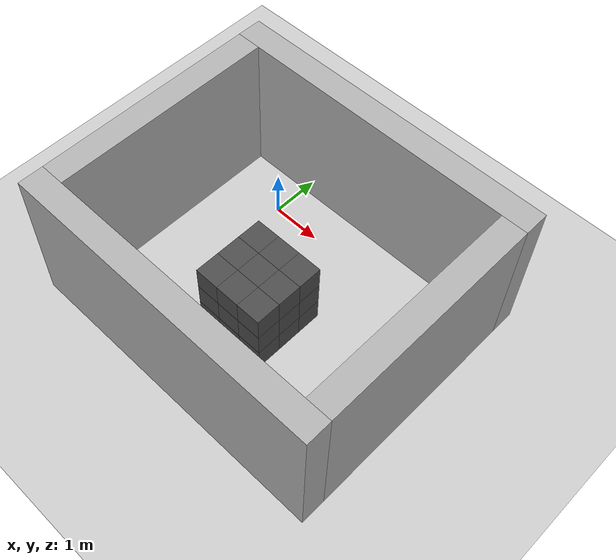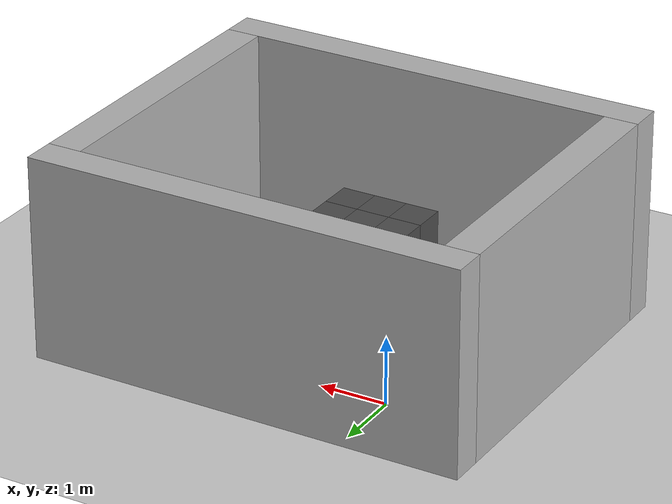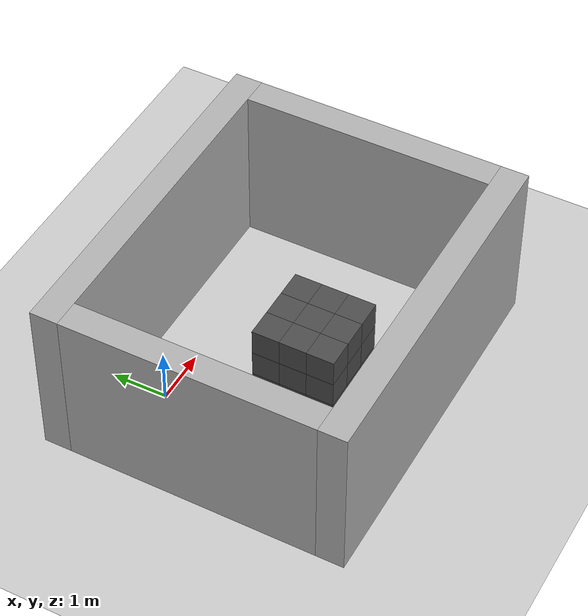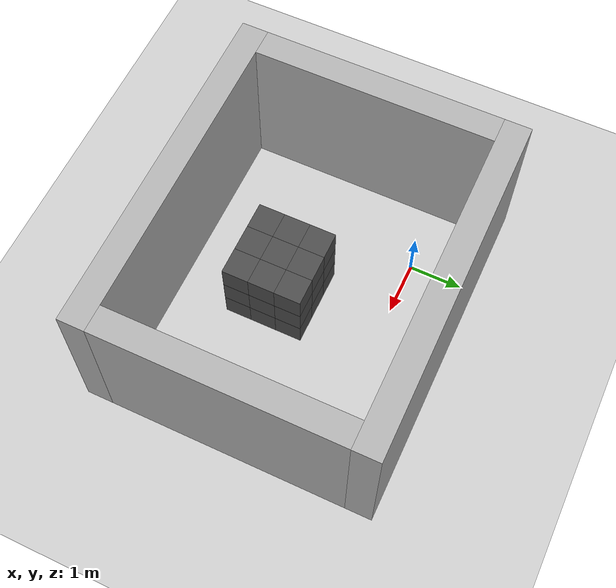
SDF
<sdf version="1.6">
 <world name="default">
  <light name="sun" type="directional">
   <cast_shadows>0</cast_shadows>
   <pose>0 0 10 0 -0 0</pose>
   <diffuse>0.8 0.8 0.8 1</diffuse>
   <specular>0.2 0.2 0.2 1</specular>
   <attenuation>
    <range>1000</range>
    <constant>0.9</constant>
    <linear>0.01</linear>
    <quadratic>0.001</quadratic>
   </attenuation>
   <direction>-0.5 0.1 -0.9</direction>
  </light>
  <include><uri>model://ground_plane</uri></include>
  <gravity>0 0 -9.8</gravity>
  <magnetic_field>6e-06 2.3e-05 -4.2e-05</magnetic_field>
  <atmosphere type="adiabatic"/>
  <physics name="default_physics" default="0" type="ode">
   <max_step_size>0.001</max_step_size>
   <real_time_factor>1</real_time_factor>
   <real_time_update_rate>1000</real_time_update_rate>
  </physics>
  <scene><ambient>0.4 0.4 0.4 1</ambient><background>0.7 0.7 0.7 1</background><shadows>0</shadows></scene>
  <spherical_coordinates>
   <surface_model>EARTH_WGS84</surface_model>
   <latitude_deg>0</latitude_deg>
   <longitude_deg>0</longitude_deg>
   <elevation>0</elevation>
   <heading_deg>0</heading_deg>
  </spherical_coordinates>
  <model name="wall_0">
   <pose frame="sim_world">-1.5 -1.5 1.5 0 0 0</pose>
   <static>True</static>
   <link name="wall_0_link">
    <inertial>
     <mass>100</mass>
     <inertia>
      <ixx>0.166667</ixx>
      <ixy>0</ixy>
      <ixz>0</ixz>
      <iyy>0.166667</iyy>
      <iyz>0</iyz>
      <izz>0.166667</izz>
     </inertia>
    </inertial>
    <collision name="wall_0_collision">
     <geometry><box><size>0.5 4.5 3.0</size></box></geometry>
     <max_contacts>100</max_contacts>
    </collision>
    <visual name="wall_0_visual">
     <geometry><box><size>0.5 4.5 3.0</size></box></geometry>
     <material><ambient>0.7 0.7 0.7 1</ambient><diffuse>0.7 0.7 0.7 1</diffuse></material>
    </visual>
   </link>
  </model>
  <model name="wall_1">
   <pose frame="sim_world">4.5 -1.5 1.5 0 0 0</pose>
   <static>True</static>
   <link name="wall_1_link">
    <inertial>
     <mass>100</mass>
     <inertia>
      <ixx>0.166667</ixx>
      <ixy>0</ixy>
      <ixz>0</ixz>
      <iyy>0.166667</iyy>
      <iyz>0</iyz>
      <izz>0.166667</izz>
     </inertia>
    </inertial>
    <collision name="wall_1_collision">
     <geometry><box><size>0.5 4.5 3.0</size></box></geometry>
     <max_contacts>100</max_contacts>
    </collision>
    <visual name="wall_1_visual">
     <geometry><box><size>0.5 4.5 3.0</size></box></geometry>
     <material><ambient>0.7 0.7 0.7 1</ambient><diffuse>0.7 0.7 0.7 1</diffuse></material>
    </visual>
   </link>
  </model>
  <model name="wall_2">
   <pose frame="sim_world">1.5 -4.0 1.5 0 0 0</pose>
   <static>True</static>
   <link name="wall_2_link">
    <inertial>
     <mass>100</mass>
     <inertia>
      <ixx>0.166667</ixx>
      <ixy>0</ixy>
      <ixz>0</ixz>
      <iyy>0.166667</iyy>
      <iyz>0</iyz>
      <izz>0.166667</izz>
     </inertia>
    </inertial>
    <collision name="wall_2_collision">
     <geometry><box><size>6.5 0.5 3.0</size></box></geometry>
     <max_contacts>100</max_contacts>
    </collision>
    <visual name="wall_2_visual">
     <geometry><box><size>6.5 0.5 3.0</size></box></geometry>
     <material><ambient>0.7 0.7 0.7 1</ambient><diffuse>0.7 0.7 0.7 1</diffuse></material>
    </visual>
   </link>
  </model>
  <model name="wall_3">
   <pose frame="sim_world">1.5 1.0 1.5 0 0 0</pose>
   <static>True</static>
   <link name="wall_3_link">
    <inertial>
     <mass>100</mass>
     <inertia>
      <ixx>0.166667</ixx>
      <ixy>0</ixy>
      <ixz>0</ixz>
      <iyy>0.166667</iyy>
      <iyz>0</iyz>
      <izz>0.166667</izz>
     </inertia>
    </inertial>
    <collision name="wall_3_collision">
     <geometry><box><size>6.5 0.5 3.0</size></box></geometry>
     <max_contacts>100</max_contacts>
    </collision>
    <visual name="wall_3_visual">
     <geometry><box><size>6.5 0.5 3.0</size></box></geometry>
     <material><ambient>0.7 0.7 0.7 1</ambient><diffuse>0.7 0.7 0.7 1</diffuse></material>
    </visual>
   </link>
  </model>
  <model name="box_0">
   <pose frame="sim_world">1.0 -2.5 0.25 0 -0 0</pose>
   <static>True</static>
   <link name="box_0_link">
    <inertial>
     <mass>100</mass>
     <inertia>
      <ixx>0.166667</ixx>
      <ixy>0</ixy>
      <ixz>0</ixz>
      <iyy>0.166667</iyy>
      <iyz>0</iyz>
      <izz>0.166667</izz>
     </inertia>
    </inertial>
    <collision name="box_0_collision">
     <geometry><box><size>0.5 0.5 0.5</size></box></geometry>
     <max_contacts>100</max_contacts>
    </collision>
    <visual name="box_0_visual">
     <geometry><box><size>0.5 0.5 0.5</size></box></geometry>
     <material><ambient>0.3 0.3 0.3 1</ambient><diffuse>0.3 0.3 0.3 1</diffuse></material>
    </visual>
   </link>
  </model>
  <model name="box_1">
   <pose frame="sim_world">1.0 -2.5 0.75 0 -0 0</pose>
   <static>True</static>
   <link name="box_1_link">
    <inertial>
     <mass>100</mass>
     <inertia>
      <ixx>0.166667</ixx>
      <ixy>0</ixy>
      <ixz>0</ixz>
      <iyy>0.166667</iyy>
      <iyz>0</iyz>
      <izz>0.166667</izz>
     </inertia>
    </inertial>
    <collision name="box_1_collision">
     <geometry><box><size>0.5 0.5 0.5</size></box></geometry>
     <max_contacts>100</max_contacts>
    </collision>
    <visual name="box_1_visual">
     <geometry><box><size>0.5 0.5 0.5</size></box></geometry>
     <material><ambient>0.3 0.3 0.3 1</ambient><diffuse>0.3 0.3 0.3 1</diffuse></material>
    </visual>
   </link>
  </model>
  <model name="box_2">
   <pose frame="sim_world">1.0 -2.5 1.25 0 -0 0</pose>
   <static>True</static>
   <link name="box_2_link">
    <inertial>
     <mass>100</mass>
     <inertia>
      <ixx>0.166667</ixx>
      <ixy>0</ixy>
      <ixz>0</ixz>
      <iyy>0.166667</iyy>
      <iyz>0</iyz>
      <izz>0.166667</izz>
     </inertia>
    </inertial>
    <collision name="box_2_collision">
     <geometry><box><size>0.5 0.5 0.5</size></box></geometry>
     <max_contacts>100</max_contacts>
    </collision>
    <visual name="box_2_visual">
     <geometry><box><size>0.5 0.5 0.5</size></box></geometry>
     <material><ambient>0.3 0.3 0.3 1</ambient><diffuse>0.3 0.3 0.3 1</diffuse></material>
    </visual>
   </link>
  </model>
  <model name="box_3">
   <pose frame="sim_world">1.0 -2.0 0.25 0 -0 0</pose>
   <static>True</static>
   <link name="box_3_link">
    <inertial>
     <mass>100</mass>
     <inertia>
      <ixx>0.166667</ixx>
      <ixy>0</ixy>
      <ixz>0</ixz>
      <iyy>0.166667</iyy>
      <iyz>0</iyz>
      <izz>0.166667</izz>
     </inertia>
    </inertial>
    <collision name="box_3_collision">
     <geometry><box><size>0.5 0.5 0.5</size></box></geometry>
     <max_contacts>100</max_contacts>
    </collision>
    <visual name="box_3_visual">
     <geometry><box><size>0.5 0.5 0.5</size></box></geometry>
     <material><ambient>0.3 0.3 0.3 1</ambient><diffuse>0.3 0.3 0.3 1</diffuse></material>
    </visual>
   </link>
  </model>
  <model name="box_4">
   <pose frame="sim_world">1.0 -2.0 0.75 0 -0 0</pose>
   <static>True</static>
   <link name="box_4_link">
    <inertial>
     <mass>100</mass>
     <inertia>
      <ixx>0.166667</ixx>
      <ixy>0</ixy>
      <ixz>0</ixz>
      <iyy>0.166667</iyy>
      <iyz>0</iyz>
      <izz>0.166667</izz>
     </inertia>
    </inertial>
    <collision name="box_4_collision">
     <geometry><box><size>0.5 0.5 0.5</size></box></geometry>
     <max_contacts>100</max_contacts>
    </collision>
    <visual name="box_4_visual">
     <geometry><box><size>0.5 0.5 0.5</size></box></geometry>
     <material><ambient>0.3 0.3 0.3 1</ambient><diffuse>0.3 0.3 0.3 1</diffuse></material>
    </visual>
   </link>
  </model>
  <model name="box_5">
   <pose frame="sim_world">1.0 -2.0 1.25 0 -0 0</pose>
   <static>True</static>
   <link name="box_5_link">
    <inertial>
     <mass>100</mass>
     <inertia>
      <ixx>0.166667</ixx>
      <ixy>0</ixy>
      <ixz>0</ixz>
      <iyy>0.166667</iyy>
      <iyz>0</iyz>
      <izz>0.166667</izz>
     </inertia>
    </inertial>
    <collision name="box_5_collision">
     <geometry><box><size>0.5 0.5 0.5</size></box></geometry>
     <max_contacts>100</max_contacts>
    </collision>
    <visual name="box_5_visual">
     <geometry><box><size>0.5 0.5 0.5</size></box></geometry>
     <material><ambient>0.3 0.3 0.3 1</ambient><diffuse>0.3 0.3 0.3 1</diffuse></material>
    </visual>
   </link>
  </model>
  <model name="box_6">
   <pose frame="sim_world">1.0 -1.5 0.25 0 -0 0</pose>
   <static>True</static>
   <link name="box_6_link">
    <inertial>
     <mass>100</mass>
     <inertia>
      <ixx>0.166667</ixx>
      <ixy>0</ixy>
      <ixz>0</ixz>
      <iyy>0.166667</iyy>
      <iyz>0</iyz>
      <izz>0.166667</izz>
     </inertia>
    </inertial>
    <collision name="box_6_collision">
     <geometry><box><size>0.5 0.5 0.5</size></box></geometry>
     <max_contacts>100</max_contacts>
    </collision>
    <visual name="box_6_visual">
     <geometry><box><size>0.5 0.5 0.5</size></box></geometry>
     <material><ambient>0.3 0.3 0.3 1</ambient><diffuse>0.3 0.3 0.3 1</diffuse></material>
    </visual>
   </link>
  </model>
  <model name="box_7">
   <pose frame="sim_world">1.0 -1.5 0.75 0 -0 0</pose>
   <static>True</static>
   <link name="box_7_link">
    <inertial>
     <mass>100</mass>
     <inertia>
      <ixx>0.166667</ixx>
      <ixy>0</ixy>
      <ixz>0</ixz>
      <iyy>0.166667</iyy>
      <iyz>0</iyz>
      <izz>0.166667</izz>
     </inertia>
    </inertial>
    <collision name="box_7_collision">
     <geometry><box><size>0.5 0.5 0.5</size></box></geometry>
     <max_contacts>100</max_contacts>
    </collision>
    <visual name="box_7_visual">
     <geometry><box><size>0.5 0.5 0.5</size></box></geometry>
     <material><ambient>0.3 0.3 0.3 1</ambient><diffuse>0.3 0.3 0.3 1</diffuse></material>
    </visual>
   </link>
  </model>
  <model name="box_8">
   <pose frame="sim_world">1.0 -1.5 1.25 0 -0 0</pose>
   <static>True</static>
   <link name="box_8_link">
    <inertial>
     <mass>100</mass>
     <inertia>
      <ixx>0.166667</ixx>
      <ixy>0</ixy>
      <ixz>0</ixz>
      <iyy>0.166667</iyy>
      <iyz>0</iyz>
      <izz>0.166667</izz>
     </inertia>
    </inertial>
    <collision name="box_8_collision">
     <geometry><box><size>0.5 0.5 0.5</size></box></geometry>
     <max_contacts>100</max_contacts>
    </collision>
    <visual name="box_8_visual">
     <geometry><box><size>0.5 0.5 0.5</size></box></geometry>
     <material><ambient>0.3 0.3 0.3 1</ambient><diffuse>0.3 0.3 0.3 1</diffuse></material>
    </visual>
   </link>
  </model>
  <model name="box_9">
   <pose frame="sim_world">1.5 -2.5 0.25 0 -0 0</pose>
   <static>True</static>
   <link name="box_9_link">
    <inertial>
     <mass>100</mass>
     <inertia>
      <ixx>0.166667</ixx>
      <ixy>0</ixy>
      <ixz>0</ixz>
      <iyy>0.166667</iyy>
      <iyz>0</iyz>
      <izz>0.166667</izz>
     </inertia>
    </inertial>
    <collision name="box_9_collision">
     <geometry><box><size>0.5 0.5 0.5</size></box></geometry>
     <max_contacts>100</max_contacts>
    </collision>
    <visual name="box_9_visual">
     <geometry><box><size>0.5 0.5 0.5</size></box></geometry>
     <material><ambient>0.3 0.3 0.3 1</ambient><diffuse>0.3 0.3 0.3 1</diffuse></material>
    </visual>
   </link>
  </model>
  <model name="box_10">
   <pose frame="sim_world">1.5 -2.5 0.75 0 -0 0</pose>
   <static>True</static>
   <link name="box_10_link">
    <inertial>
     <mass>100</mass>
     <inertia>
      <ixx>0.166667</ixx>
      <ixy>0</ixy>
      <ixz>0</ixz>
      <iyy>0.166667</iyy>
      <iyz>0</iyz>
      <izz>0.166667</izz>
     </inertia>
    </inertial>
    <collision name="box_10_collision">
     <geometry><box><size>0.5 0.5 0.5</size></box></geometry>
     <max_contacts>100</max_contacts>
    </collision>
    <visual name="box_10_visual">
     <geometry><box><size>0.5 0.5 0.5</size></box></geometry>
     <material><ambient>0.3 0.3 0.3 1</ambient><diffuse>0.3 0.3 0.3 1</diffuse></material>
    </visual>
   </link>
  </model>
  <model name="box_11">
   <pose frame="sim_world">1.5 -2.5 1.25 0 -0 0</pose>
   <static>True</static>
   <link name="box_11_link">
    <inertial>
     <mass>100</mass>
     <inertia>
      <ixx>0.166667</ixx>
      <ixy>0</ixy>
      <ixz>0</ixz>
      <iyy>0.166667</iyy>
      <iyz>0</iyz>
      <izz>0.166667</izz>
     </inertia>
    </inertial>
    <collision name="box_11_collision">
     <geometry><box><size>0.5 0.5 0.5</size></box></geometry>
     <max_contacts>100</max_contacts>
    </collision>
    <visual name="box_11_visual">
     <geometry><box><size>0.5 0.5 0.5</size></box></geometry>
     <material><ambient>0.3 0.3 0.3 1</ambient><diffuse>0.3 0.3 0.3 1</diffuse></material>
    </visual>
   </link>
  </model>
  <model name="box_12">
   <pose frame="sim_world">1.5 -2.0 0.25 0 -0 0</pose>
   <static>True</static>
   <link name="box_12_link">
    <inertial>
     <mass>100</mass>
     <inertia>
      <ixx>0.166667</ixx>
      <ixy>0</ixy>
      <ixz>0</ixz>
      <iyy>0.166667</iyy>
      <iyz>0</iyz>
      <izz>0.166667</izz>
     </inertia>
    </inertial>
    <collision name="box_12_collision">
     <geometry><box><size>0.5 0.5 0.5</size></box></geometry>
     <max_contacts>100</max_contacts>
    </collision>
    <visual name="box_12_visual">
     <geometry><box><size>0.5 0.5 0.5</size></box></geometry>
     <material><ambient>0.3 0.3 0.3 1</ambient><diffuse>0.3 0.3 0.3 1</diffuse></material>
    </visual>
   </link>
  </model>
  <model name="box_13">
   <pose frame="sim_world">1.5 -2.0 0.75 0 -0 0</pose>
   <static>True</static>
   <link name="box_13_link">
    <inertial>
     <mass>100</mass>
     <inertia>
      <ixx>0.166667</ixx>
      <ixy>0</ixy>
      <ixz>0</ixz>
      <iyy>0.166667</iyy>
      <iyz>0</iyz>
      <izz>0.166667</izz>
     </inertia>
    </inertial>
    <collision name="box_13_collision">
     <geometry><box><size>0.5 0.5 0.5</size></box></geometry>
     <max_contacts>100</max_contacts>
    </collision>
    <visual name="box_13_visual">
     <geometry><box><size>0.5 0.5 0.5</size></box></geometry>
     <material><ambient>0.3 0.3 0.3 1</ambient><diffuse>0.3 0.3 0.3 1</diffuse></material>
    </visual>
   </link>
  </model>
  <model name="box_14">
   <pose frame="sim_world">1.5 -2.0 1.25 0 -0 0</pose>
   <static>True</static>
   <link name="box_14_link">
    <inertial>
     <mass>100</mass>
     <inertia>
      <ixx>0.166667</ixx>
      <ixy>0</ixy>
      <ixz>0</ixz>
      <iyy>0.166667</iyy>
      <iyz>0</iyz>
      <izz>0.166667</izz>
     </inertia>
    </inertial>
    <collision name="box_14_collision">
     <geometry><box><size>0.5 0.5 0.5</size></box></geometry>
     <max_contacts>100</max_contacts>
    </collision>
    <visual name="box_14_visual">
     <geometry><box><size>0.5 0.5 0.5</size></box></geometry>
     <material><ambient>0.3 0.3 0.3 1</ambient><diffuse>0.3 0.3 0.3 1</diffuse></material>
    </visual>
   </link>
  </model>
  <model name="box_15">
   <pose frame="sim_world">1.5 -1.5 0.25 0 -0 0</pose>
   <static>True</static>
   <link name="box_15_link">
    <inertial>
     <mass>100</mass>
     <inertia>
      <ixx>0.166667</ixx>
      <ixy>0</ixy>
      <ixz>0</ixz>
      <iyy>0.166667</iyy>
      <iyz>0</iyz>
      <izz>0.166667</izz>
     </inertia>
    </inertial>
    <collision name="box_15_collision">
     <geometry><box><size>0.5 0.5 0.5</size></box></geometry>
     <max_contacts>100</max_contacts>
    </collision>
    <visual name="box_15_visual">
     <geometry><box><size>0.5 0.5 0.5</size></box></geometry>
     <material><ambient>0.3 0.3 0.3 1</ambient><diffuse>0.3 0.3 0.3 1</diffuse></material>
    </visual>
   </link>
  </model>
  <model name="box_16">
   <pose frame="sim_world">1.5 -1.5 0.75 0 -0 0</pose>
   <static>True</static>
   <link name="box_16_link">
    <inertial>
     <mass>100</mass>
     <inertia>
      <ixx>0.166667</ixx>
      <ixy>0</ixy>
      <ixz>0</ixz>
      <iyy>0.166667</iyy>
      <iyz>0</iyz>
      <izz>0.166667</izz>
     </inertia>
    </inertial>
    <collision name="box_16_collision">
     <geometry><box><size>0.5 0.5 0.5</size></box></geometry>
     <max_contacts>100</max_contacts>
    </collision>
    <visual name="box_16_visual">
     <geometry><box><size>0.5 0.5 0.5</size></box></geometry>
     <material><ambient>0.3 0.3 0.3 1</ambient><diffuse>0.3 0.3 0.3 1</diffuse></material>
    </visual>
   </link>
  </model>
  <model name="box_17">
   <pose frame="sim_world">1.5 -1.5 1.25 0 -0 0</pose>
   <static>True</static>
   <link name="box_17_link">
    <inertial>
     <mass>100</mass>
     <inertia>
      <ixx>0.166667</ixx>
      <ixy>0</ixy>
      <ixz>0</ixz>
      <iyy>0.166667</iyy>
      <iyz>0</iyz>
      <izz>0.166667</izz>
     </inertia>
    </inertial>
    <collision name="box_17_collision">
     <geometry><box><size>0.5 0.5 0.5</size></box></geometry>
     <max_contacts>100</max_contacts>
    </collision>
    <visual name="box_17_visual">
     <geometry><box><size>0.5 0.5 0.5</size></box></geometry>
     <material><ambient>0.3 0.3 0.3 1</ambient><diffuse>0.3 0.3 0.3 1</diffuse></material>
    </visual>
   </link>
  </model>
  <model name="box_18">
   <pose frame="sim_world">2.0 -2.5 0.25 0 -0 0</pose>
   <static>True</static>
   <link name="box_18_link">
    <inertial>
     <mass>100</mass>
     <inertia>
      <ixx>0.166667</ixx>
      <ixy>0</ixy>
      <ixz>0</ixz>
      <iyy>0.166667</iyy>
      <iyz>0</iyz>
      <izz>0.166667</izz>
     </inertia>
    </inertial>
    <collision name="box_18_collision">
     <geometry><box><size>0.5 0.5 0.5</size></box></geometry>
     <max_contacts>100</max_contacts>
    </collision>
    <visual name="box_18_visual">
     <geometry><box><size>0.5 0.5 0.5</size></box></geometry>
     <material><ambient>0.3 0.3 0.3 1</ambient><diffuse>0.3 0.3 0.3 1</diffuse></material>
    </visual>
   </link>
  </model>
  <model name="box_19">
   <pose frame="sim_world">2.0 -2.5 0.75 0 -0 0</pose>
   <static>True</static>
   <link name="box_19_link">
    <inertial>
     <mass>100</mass>
     <inertia>
      <ixx>0.166667</ixx>
      <ixy>0</ixy>
      <ixz>0</ixz>
      <iyy>0.166667</iyy>
      <iyz>0</iyz>
      <izz>0.166667</izz>
     </inertia>
    </inertial>
    <collision name="box_19_collision">
     <geometry><box><size>0.5 0.5 0.5</size></box></geometry>
     <max_contacts>100</max_contacts>
    </collision>
    <visual name="box_19_visual">
     <geometry><box><size>0.5 0.5 0.5</size></box></geometry>
     <material><ambient>0.3 0.3 0.3 1</ambient><diffuse>0.3 0.3 0.3 1</diffuse></material>
    </visual>
   </link>
  </model>
  <model name="box_20">
   <pose frame="sim_world">2.0 -2.5 1.25 0 -0 0</pose>
   <static>True</static>
   <link name="box_20_link">
    <inertial>
     <mass>100</mass>
     <inertia>
      <ixx>0.166667</ixx>
      <ixy>0</ixy>
      <ixz>0</ixz>
      <iyy>0.166667</iyy>
      <iyz>0</iyz>
      <izz>0.166667</izz>
     </inertia>
    </inertial>
    <collision name="box_20_collision">
     <geometry><box><size>0.5 0.5 0.5</size></box></geometry>
     <max_contacts>100</max_contacts>
    </collision>
    <visual name="box_20_visual">
     <geometry><box><size>0.5 0.5 0.5</size></box></geometry>
     <material><ambient>0.3 0.3 0.3 1</ambient><diffuse>0.3 0.3 0.3 1</diffuse></material>
    </visual>
   </link>
  </model>
  <model name="box_21">
   <pose frame="sim_world">2.0 -2.0 0.25 0 -0 0</pose>
   <static>True</static>
   <link name="box_21_link">
    <inertial>
     <mass>100</mass>
     <inertia>
      <ixx>0.166667</ixx>
      <ixy>0</ixy>
      <ixz>0</ixz>
      <iyy>0.166667</iyy>
      <iyz>0</iyz>
      <izz>0.166667</izz>
     </inertia>
    </inertial>
    <collision name="box_21_collision">
     <geometry><box><size>0.5 0.5 0.5</size></box></geometry>
     <max_contacts>100</max_contacts>
    </collision>
    <visual name="box_21_visual">
     <geometry><box><size>0.5 0.5 0.5</size></box></geometry>
     <material><ambient>0.3 0.3 0.3 1</ambient><diffuse>0.3 0.3 0.3 1</diffuse></material>
    </visual>
   </link>
  </model>
  <model name="box_22">
   <pose frame="sim_world">2.0 -2.0 0.75 0 -0 0</pose>
   <static>True</static>
   <link name="box_22_link">
    <inertial>
     <mass>100</mass>
     <inertia>
      <ixx>0.166667</ixx>
      <ixy>0</ixy>
      <ixz>0</ixz>
      <iyy>0.166667</iyy>
      <iyz>0</iyz>
      <izz>0.166667</izz>
     </inertia>
    </inertial>
    <collision name="box_22_collision">
     <geometry><box><size>0.5 0.5 0.5</size></box></geometry>
     <max_contacts>100</max_contacts>
    </collision>
    <visual name="box_22_visual">
     <geometry><box><size>0.5 0.5 0.5</size></box></geometry>
     <material><ambient>0.3 0.3 0.3 1</ambient><diffuse>0.3 0.3 0.3 1</diffuse></material>
    </visual>
   </link>
  </model>
  <model name="box_23">
   <pose frame="sim_world">2.0 -2.0 1.25 0 -0 0</pose>
   <static>True</static>
   <link name="box_23_link">
    <inertial>
     <mass>100</mass>
     <inertia>
      <ixx>0.166667</ixx>
      <ixy>0</ixy>
      <ixz>0</ixz>
      <iyy>0.166667</iyy>
      <iyz>0</iyz>
      <izz>0.166667</izz>
     </inertia>
    </inertial>
    <collision name="box_23_collision">
     <geometry><box><size>0.5 0.5 0.5</size></box></geometry>
     <max_contacts>100</max_contacts>
    </collision>
    <visual name="box_23_visual">
     <geometry><box><size>0.5 0.5 0.5</size></box></geometry>
     <material><ambient>0.3 0.3 0.3 1</ambient><diffuse>0.3 0.3 0.3 1</diffuse></material>
    </visual>
   </link>
  </model>
  <model name="box_24">
   <pose frame="sim_world">2.0 -1.5 0.25 0 -0 0</pose>
   <static>True</static>
   <link name="box_24_link">
    <inertial>
     <mass>100</mass>
     <inertia>
      <ixx>0.166667</ixx>
      <ixy>0</ixy>
      <ixz>0</ixz>
      <iyy>0.166667</iyy>
      <iyz>0</iyz>
      <izz>0.166667</izz>
     </inertia>
    </inertial>
    <collision name="box_24_collision">
     <geometry><box><size>0.5 0.5 0.5</size></box></geometry>
     <max_contacts>100</max_contacts>
    </collision>
    <visual name="box_24_visual">
     <geometry><box><size>0.5 0.5 0.5</size></box></geometry>
     <material><ambient>0.3 0.3 0.3 1</ambient><diffuse>0.3 0.3 0.3 1</diffuse></material>
    </visual>
   </link>
  </model>
  <model name="box_25">
   <pose frame="sim_world">2.0 -1.5 0.75 0 -0 0</pose>
   <static>True</static>
   <link name="box_25_link">
    <inertial>
     <mass>100</mass>
     <inertia>
      <ixx>0.166667</ixx>
      <ixy>0</ixy>
      <ixz>0</ixz>
      <iyy>0.166667</iyy>
      <iyz>0</iyz>
      <izz>0.166667</izz>
     </inertia>
    </inertial>
    <collision name="box_25_collision">
     <geometry><box><size>0.5 0.5 0.5</size></box></geometry>
     <max_contacts>100</max_contacts>
    </collision>
    <visual name="box_25_visual">
     <geometry><box><size>0.5 0.5 0.5</size></box></geometry>
     <material><ambient>0.3 0.3 0.3 1</ambient><diffuse>0.3 0.3 0.3 1</diffuse></material>
    </visual>
   </link>
  </model>
  <model name="box_26">
   <pose frame="sim_world">2.0 -1.5 1.25 0 -0 0</pose>
   <static>True</static>
   <link name="box_26_link">
    <inertial>
     <mass>100</mass>
     <inertia>
      <ixx>0.166667</ixx>
      <ixy>0</ixy>
      <ixz>0</ixz>
      <iyy>0.166667</iyy>
      <iyz>0</iyz>
      <izz>0.166667</izz>
     </inertia>
    </inertial>
    <collision name="box_26_collision">
     <geometry><box><size>0.5 0.5 0.5</size></box></geometry>
     <max_contacts>100</max_contacts>
    </collision>
    <visual name="box_26_visual">
     <geometry><box><size>0.5 0.5 0.5</size></box></geometry>
     <material><ambient>0.3 0.3 0.3 1</ambient><diffuse>0.3 0.3 0.3 1</diffuse></material>
    </visual>
   </link>
  </model>
  <include><uri>model://ground_plane</uri></include>
  <model name="ground_plane"><link name="ground_plane"/></model>
 </world>
</sdf>
